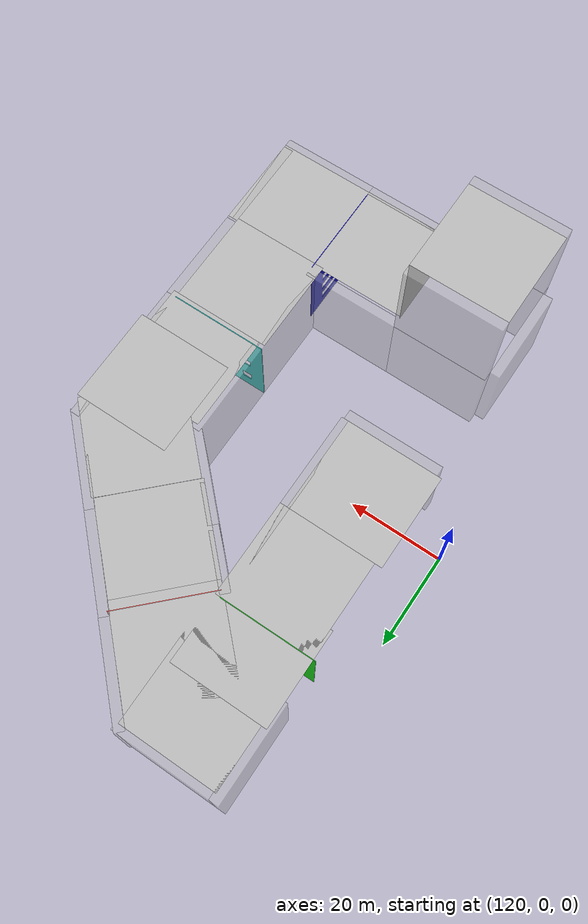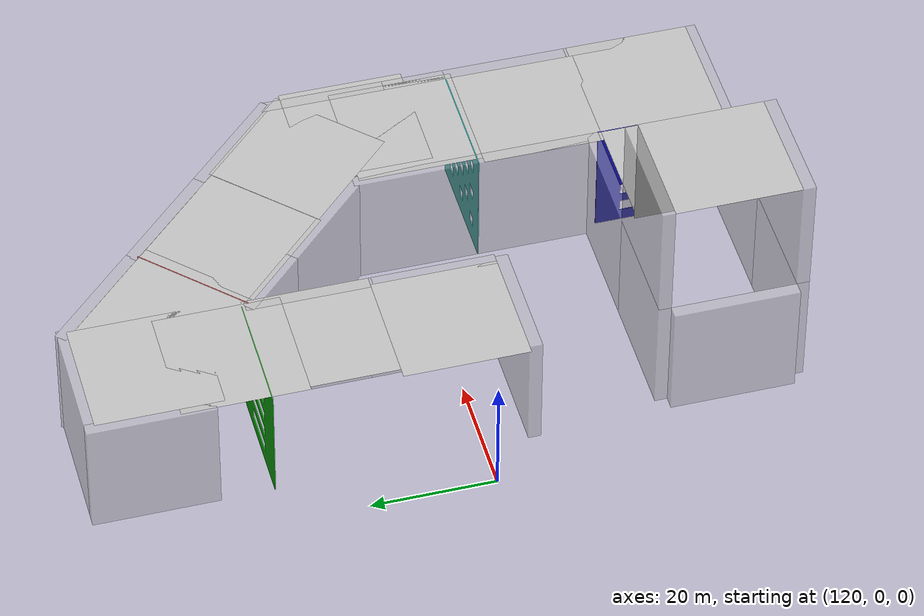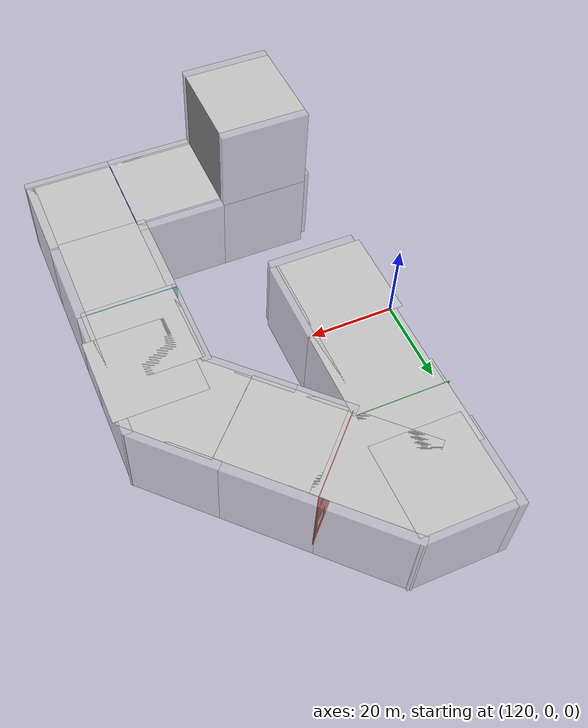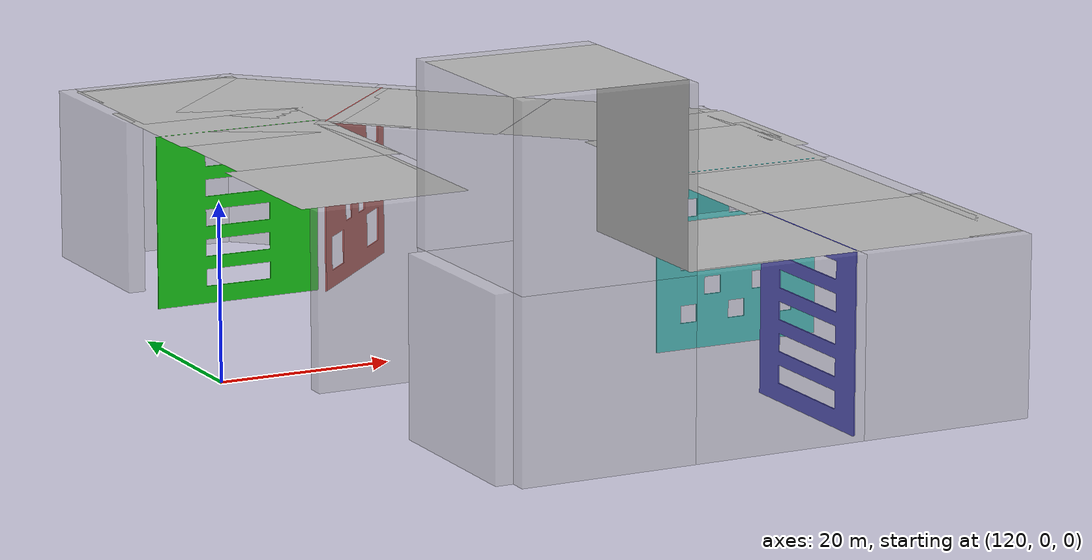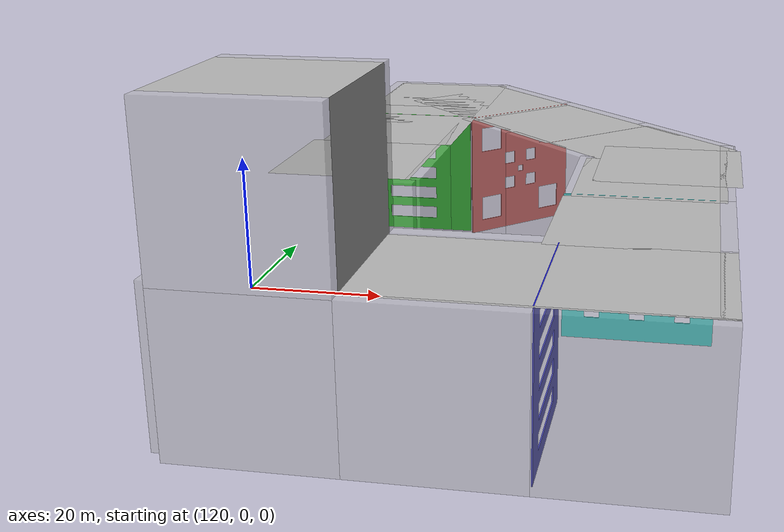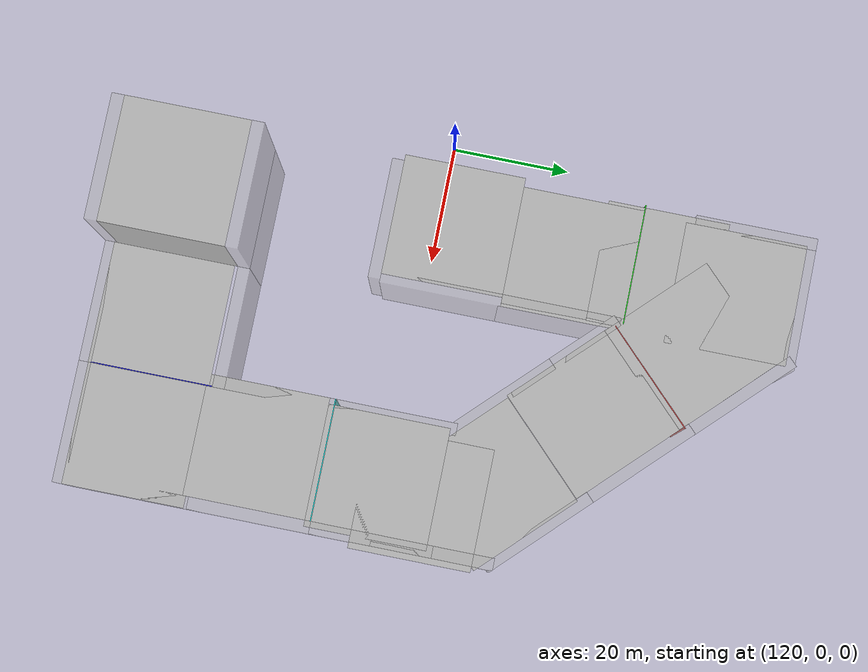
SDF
<sdf version="1.7">
 <model name="race_1_1">
  <link name="link_clone_10_clone_3">
   <pose>140 -51 30 1.5708 -0 0</pose>
   <visual name="visual">
    <transparency>0.6</transparency>
    <geometry><box><size>20 20 2</size></box></geometry>
    <material>
     <script>
      <uri>model://new_wall/materials/scripts</uri>
      <uri>model://new_wall/materials/textures/</uri>
      <name>NewWall/Image</name>
     </script>
     <shader type="pixel"/>
    </material>
   </visual>
   <collision name="collision">
    <geometry><box><size>20 20 2</size></box></geometry>
    <surface>
     <friction>
      <ode><mu>1</mu><mu2>1</mu2><fdir1>0 0 0</fdir1><slip1>0</slip1><slip2>0</slip2></ode>
      <torsional>
       <coefficient>1</coefficient>
       <patch_radius>0</patch_radius>
       <surface_radius>0</surface_radius>
       <use_patch_radius>1</use_patch_radius>
       <ode><slip>0</slip></ode>
      </torsional>
     </friction>
     <bounce><restitution_coefficient>0</restitution_coefficient><threshold>1e+06</threshold></bounce>
     <contact>
      <collide_without_contact>0</collide_without_contact>
      <collide_without_contact_bitmask>1</collide_without_contact_bitmask>
      <collide_bitmask>1</collide_bitmask>
      <ode>
       <soft_cfm>0</soft_cfm>
       <soft_erp>0.2</soft_erp>
       <kp>1e+13</kp>
       <kd>1</kd>
       <max_vel>0.01</max_vel>
       <min_depth>0</min_depth>
      </ode>
      <bullet>
       <split_impulse>1</split_impulse>
       <split_impulse_penetration_threshold>-0.01</split_impulse_penetration_threshold>
       <soft_cfm>0</soft_cfm>
       <soft_erp>0.2</soft_erp>
       <kp>1e+13</kp>
       <kd>1</kd>
      </bullet>
     </contact>
    </surface>
   </collision>
  </link>
  <link name="link_clone_10_clone_5">
   <pose>140 -29 30 1.5708 -0 0</pose>
   <visual name="visual">
    <transparency>0.6</transparency>
    <geometry><box><size>20 20 2</size></box></geometry>
    <material>
     <script>
      <uri>model://new_wall/materials/scripts</uri>
      <uri>model://new_wall/materials/textures/</uri>
      <name>NewWall/Image</name>
     </script>
     <shader type="pixel"/>
    </material>
   </visual>
   <collision name="collision">
    <geometry><box><size>20 20 2</size></box></geometry>
    <surface>
     <friction>
      <ode><mu>1</mu><mu2>1</mu2><fdir1>0 0 0</fdir1><slip1>0</slip1><slip2>0</slip2></ode>
      <torsional>
       <coefficient>1</coefficient>
       <patch_radius>0</patch_radius>
       <surface_radius>0</surface_radius>
       <use_patch_radius>1</use_patch_radius>
       <ode><slip>0</slip></ode>
      </torsional>
     </friction>
     <bounce><restitution_coefficient>0</restitution_coefficient><threshold>1e+06</threshold></bounce>
     <contact>
      <collide_without_contact>0</collide_without_contact>
      <collide_without_contact_bitmask>1</collide_without_contact_bitmask>
      <collide_bitmask>1</collide_bitmask>
      <ode>
       <soft_cfm>0</soft_cfm>
       <soft_erp>0.2</soft_erp>
       <kp>1e+13</kp>
       <kd>1</kd>
       <max_vel>0.01</max_vel>
       <min_depth>0</min_depth>
      </ode>
      <bullet>
       <split_impulse>1</split_impulse>
       <split_impulse_penetration_threshold>-0.01</split_impulse_penetration_threshold>
       <soft_cfm>0</soft_cfm>
       <soft_erp>0.2</soft_erp>
       <kp>1e+13</kp>
       <kd>1</kd>
      </bullet>
     </contact>
    </surface>
   </collision>
  </link>
  <link name="link_clone_12">
   <pose>140 -29 10 1.5708 -0 0</pose>
   <visual name="visual">
    <transparency>0.6</transparency>
    <geometry><box><size>20 20 2</size></box></geometry>
    <material>
     <script>
      <uri>model://new_wall/materials/scripts</uri>
      <uri>model://new_wall/materials/textures/</uri>
      <name>NewWall/Image</name>
     </script>
     <shader type="pixel"/>
    </material>
   </visual>
   <collision name="collision">
    <geometry><box><size>20 20 2</size></box></geometry>
    <surface>
     <friction>
      <ode><mu>1</mu><mu2>1</mu2><fdir1>0 0 0</fdir1><slip1>0</slip1><slip2>0</slip2></ode>
      <torsional>
       <coefficient>1</coefficient>
       <patch_radius>0</patch_radius>
       <surface_radius>0</surface_radius>
       <use_patch_radius>1</use_patch_radius>
       <ode><slip>0</slip></ode>
      </torsional>
     </friction>
     <bounce><restitution_coefficient>0</restitution_coefficient><threshold>1e+06</threshold></bounce>
     <contact>
      <collide_without_contact>0</collide_without_contact>
      <collide_without_contact_bitmask>1</collide_without_contact_bitmask>
      <collide_bitmask>1</collide_bitmask>
      <ode>
       <soft_cfm>0</soft_cfm>
       <soft_erp>0.2</soft_erp>
       <kp>1e+13</kp>
       <kd>1</kd>
       <max_vel>0.01</max_vel>
       <min_depth>0</min_depth>
      </ode>
      <bullet>
       <split_impulse>1</split_impulse>
       <split_impulse_penetration_threshold>-0.01</split_impulse_penetration_threshold>
       <soft_cfm>0</soft_cfm>
       <soft_erp>0.2</soft_erp>
       <kp>1e+13</kp>
       <kd>1</kd>
      </bullet>
     </contact>
    </surface>
   </collision>
  </link>
  <link name="link_clone_13">
   <pose>160 -29 10 1.5708 -0 0</pose>
   <visual name="visual">
    <transparency>0.6</transparency>
    <geometry><box><size>20 20 2</size></box></geometry>
    <material>
     <script>
      <uri>model://new_wall/materials/scripts</uri>
      <uri>model://new_wall/materials/textures/</uri>
      <name>NewWall/Image</name>
     </script>
     <shader type="pixel"/>
    </material>
   </visual>
   <collision name="collision">
    <geometry><box><size>20 20 2</size></box></geometry>
    <surface>
     <friction>
      <ode><mu>1</mu><mu2>1</mu2><fdir1>0 0 0</fdir1><slip1>0</slip1><slip2>0</slip2></ode>
      <torsional>
       <coefficient>1</coefficient>
       <patch_radius>0</patch_radius>
       <surface_radius>0</surface_radius>
       <use_patch_radius>1</use_patch_radius>
       <ode><slip>0</slip></ode>
      </torsional>
     </friction>
     <bounce><restitution_coefficient>0</restitution_coefficient><threshold>1e+06</threshold></bounce>
     <contact>
      <collide_without_contact>0</collide_without_contact>
      <collide_without_contact_bitmask>1</collide_without_contact_bitmask>
      <collide_bitmask>1</collide_bitmask>
      <ode>
       <soft_cfm>0</soft_cfm>
       <soft_erp>0.2</soft_erp>
       <kp>1e+13</kp>
       <kd>1</kd>
       <max_vel>0.01</max_vel>
       <min_depth>0</min_depth>
      </ode>
      <bullet>
       <split_impulse>1</split_impulse>
       <split_impulse_penetration_threshold>-0.01</split_impulse_penetration_threshold>
       <soft_cfm>0</soft_cfm>
       <soft_erp>0.2</soft_erp>
       <kp>1e+13</kp>
       <kd>1</kd>
      </bullet>
     </contact>
    </surface>
   </collision>
  </link>
  <link name="link_clone_14">
   <pose>140 -51 10 1.5708 -0 0</pose>
   <visual name="visual">
    <transparency>0.6</transparency>
    <geometry><box><size>20 20 2</size></box></geometry>
    <material>
     <script>
      <uri>model://new_wall/materials/scripts</uri>
      <uri>model://new_wall/materials/textures/</uri>
      <name>NewWall/Image</name>
     </script>
     <shader type="pixel"/>
    </material>
   </visual>
   <collision name="collision">
    <geometry><box><size>20 20 2</size></box></geometry>
    <surface>
     <friction>
      <ode><mu>1</mu><mu2>1</mu2><fdir1>0 0 0</fdir1><slip1>0</slip1><slip2>0</slip2></ode>
      <torsional>
       <coefficient>1</coefficient>
       <patch_radius>0</patch_radius>
       <surface_radius>0</surface_radius>
       <use_patch_radius>1</use_patch_radius>
       <ode><slip>0</slip></ode>
      </torsional>
     </friction>
     <bounce><restitution_coefficient>0</restitution_coefficient><threshold>1e+06</threshold></bounce>
     <contact>
      <collide_without_contact>0</collide_without_contact>
      <collide_without_contact_bitmask>1</collide_without_contact_bitmask>
      <collide_bitmask>1</collide_bitmask>
      <ode>
       <soft_cfm>0</soft_cfm>
       <soft_erp>0.2</soft_erp>
       <kp>1e+13</kp>
       <kd>1</kd>
       <max_vel>0.01</max_vel>
       <min_depth>0</min_depth>
      </ode>
      <bullet>
       <split_impulse>1</split_impulse>
       <split_impulse_penetration_threshold>-0.01</split_impulse_penetration_threshold>
       <soft_cfm>0</soft_cfm>
       <soft_erp>0.2</soft_erp>
       <kp>1e+13</kp>
       <kd>1</kd>
      </bullet>
     </contact>
    </surface>
   </collision>
  </link>
  <link name="link_clone_15">
   <pose>160 -51 10 1.5708 -0 0</pose>
   <visual name="visual">
    <transparency>0.6</transparency>
    <geometry><box><size>20 20 2</size></box></geometry>
    <material>
     <script>
      <uri>model://new_wall/materials/scripts</uri>
      <uri>model://new_wall/materials/textures/</uri>
      <name>NewWall/Image</name>
     </script>
     <shader type="pixel"/>
    </material>
   </visual>
   <collision name="collision">
    <geometry><box><size>20 20 2</size></box></geometry>
    <surface>
     <friction>
      <ode><mu>1</mu><mu2>1</mu2><fdir1>0 0 0</fdir1><slip1>0</slip1><slip2>0</slip2></ode>
      <torsional>
       <coefficient>1</coefficient>
       <patch_radius>0</patch_radius>
       <surface_radius>0</surface_radius>
       <use_patch_radius>1</use_patch_radius>
       <ode><slip>0</slip></ode>
      </torsional>
     </friction>
     <bounce><restitution_coefficient>0</restitution_coefficient><threshold>1e+06</threshold></bounce>
     <contact>
      <collide_without_contact>0</collide_without_contact>
      <collide_without_contact_bitmask>1</collide_without_contact_bitmask>
      <collide_bitmask>1</collide_bitmask>
      <ode>
       <soft_cfm>0</soft_cfm>
       <soft_erp>0.2</soft_erp>
       <kp>1e+13</kp>
       <kd>1</kd>
       <max_vel>0.01</max_vel>
       <min_depth>0</min_depth>
      </ode>
      <bullet>
       <split_impulse>1</split_impulse>
       <split_impulse_penetration_threshold>-0.01</split_impulse_penetration_threshold>
       <soft_cfm>0</soft_cfm>
       <soft_erp>0.2</soft_erp>
       <kp>1e+13</kp>
       <kd>1</kd>
      </bullet>
     </contact>
    </surface>
   </collision>
  </link>
  <link name="link_clone_17">
   <pose>180 -51 10 1.5708 -0 0</pose>
   <visual name="visual">
    <transparency>0.6</transparency>
    <geometry><box><size>20 20 2</size></box></geometry>
    <material>
     <script>
      <uri>model://new_wall/materials/scripts</uri>
      <uri>model://new_wall/materials/textures/</uri>
      <name>NewWall/Image</name>
     </script>
     <shader type="pixel"/>
    </material>
   </visual>
   <collision name="collision">
    <geometry><box><size>20 20 2</size></box></geometry>
    <surface>
     <friction>
      <ode><mu>1</mu><mu2>1</mu2><fdir1>0 0 0</fdir1><slip1>0</slip1><slip2>0</slip2></ode>
      <torsional>
       <coefficient>1</coefficient>
       <patch_radius>0</patch_radius>
       <surface_radius>0</surface_radius>
       <use_patch_radius>1</use_patch_radius>
       <ode><slip>0</slip></ode>
      </torsional>
     </friction>
     <bounce><restitution_coefficient>0</restitution_coefficient><threshold>1e+06</threshold></bounce>
     <contact>
      <collide_without_contact>0</collide_without_contact>
      <collide_without_contact_bitmask>1</collide_without_contact_bitmask>
      <collide_bitmask>1</collide_bitmask>
      <ode>
       <soft_cfm>0</soft_cfm>
       <soft_erp>0.2</soft_erp>
       <kp>1e+13</kp>
       <kd>1</kd>
       <max_vel>0.01</max_vel>
       <min_depth>0</min_depth>
      </ode>
      <bullet>
       <split_impulse>1</split_impulse>
       <split_impulse_penetration_threshold>-0.01</split_impulse_penetration_threshold>
       <soft_cfm>0</soft_cfm>
       <soft_erp>0.2</soft_erp>
       <kp>1e+13</kp>
       <kd>1</kd>
      </bullet>
     </contact>
    </surface>
   </collision>
  </link>
  <link name="link_clone_18">
   <pose>182.482 26 10 1.5708 3e-06 -0.785398</pose>
   <visual name="visual">
    <transparency>0.6</transparency>
    <geometry><box><size>20 20 2</size></box></geometry>
    <material>
     <script>
      <uri>model://new_wall/materials/scripts</uri>
      <uri>model://new_wall/materials/textures/</uri>
      <name>NewWall/Image</name>
     </script>
     <shader type="pixel"/>
    </material>
   </visual>
   <collision name="collision">
    <geometry><box><size>20 20 2</size></box></geometry>
    <surface>
     <friction>
      <ode><mu>1</mu><mu2>1</mu2><fdir1>0 0 0</fdir1><slip1>0</slip1><slip2>0</slip2></ode>
      <torsional>
       <coefficient>1</coefficient>
       <patch_radius>0</patch_radius>
       <surface_radius>0</surface_radius>
       <use_patch_radius>1</use_patch_radius>
       <ode><slip>0</slip></ode>
      </torsional>
     </friction>
     <bounce><restitution_coefficient>0</restitution_coefficient><threshold>1e+06</threshold></bounce>
     <contact>
      <collide_without_contact>0</collide_without_contact>
      <collide_without_contact_bitmask>1</collide_without_contact_bitmask>
      <collide_bitmask>1</collide_bitmask>
      <ode>
       <soft_cfm>0</soft_cfm>
       <soft_erp>0.2</soft_erp>
       <kp>1e+13</kp>
       <kd>1</kd>
       <max_vel>0.01</max_vel>
       <min_depth>0</min_depth>
      </ode>
      <bullet>
       <split_impulse>1</split_impulse>
       <split_impulse_penetration_threshold>-0.01</split_impulse_penetration_threshold>
       <soft_cfm>0</soft_cfm>
       <soft_erp>0.2</soft_erp>
       <kp>1e+13</kp>
       <kd>1</kd>
      </bullet>
     </contact>
    </surface>
   </collision>
  </link>
  <link name="link_clone_18_clone">
   <pose>162.585 16 10 1.5708 3e-06 -0.785398</pose>
   <visual name="visual">
    <transparency>0.6</transparency>
    <geometry><box><size>20 20 2</size></box></geometry>
    <material>
     <script>
      <uri>model://new_wall/materials/scripts</uri>
      <uri>model://new_wall/materials/textures/</uri>
      <name>NewWall/Image</name>
     </script>
     <shader type="pixel"/>
    </material>
   </visual>
   <collision name="collision">
    <geometry><box><size>20 20 2</size></box></geometry>
    <surface>
     <friction>
      <ode><mu>1</mu><mu2>1</mu2><fdir1>0 0 0</fdir1><slip1>0</slip1><slip2>0</slip2></ode>
      <torsional>
       <coefficient>1</coefficient>
       <patch_radius>0</patch_radius>
       <surface_radius>0</surface_radius>
       <use_patch_radius>1</use_patch_radius>
       <ode><slip>0</slip></ode>
      </torsional>
     </friction>
     <bounce><restitution_coefficient>0</restitution_coefficient><threshold>1e+06</threshold></bounce>
     <contact>
      <collide_without_contact>0</collide_without_contact>
      <collide_without_contact_bitmask>1</collide_without_contact_bitmask>
      <collide_bitmask>1</collide_bitmask>
      <ode>
       <soft_cfm>0</soft_cfm>
       <soft_erp>0.2</soft_erp>
       <kp>1e+13</kp>
       <kd>1</kd>
       <max_vel>0.01</max_vel>
       <min_depth>0</min_depth>
      </ode>
      <bullet>
       <split_impulse>1</split_impulse>
       <split_impulse_penetration_threshold>-0.01</split_impulse_penetration_threshold>
       <soft_cfm>0</soft_cfm>
       <soft_erp>0.2</soft_erp>
       <kp>1e+13</kp>
       <kd>1</kd>
      </bullet>
     </contact>
    </surface>
   </collision>
  </link>
  <link name="link_clone_18_clone_0">
   <pose>168.495 40 10 1.5708 3e-06 -0.785398</pose>
   <visual name="visual">
    <transparency>0.6</transparency>
    <geometry><box><size>20 20 2</size></box></geometry>
    <material>
     <script>
      <uri>model://new_wall/materials/scripts</uri>
      <uri>model://new_wall/materials/textures/</uri>
      <name>NewWall/Image</name>
     </script>
     <shader type="pixel"/>
    </material>
   </visual>
   <collision name="collision">
    <geometry><box><size>20 20 2</size></box></geometry>
    <surface>
     <friction>
      <ode><mu>1</mu><mu2>1</mu2><fdir1>0 0 0</fdir1><slip1>0</slip1><slip2>0</slip2></ode>
      <torsional>
       <coefficient>1</coefficient>
       <patch_radius>0</patch_radius>
       <surface_radius>0</surface_radius>
       <use_patch_radius>1</use_patch_radius>
       <ode><slip>0</slip></ode>
      </torsional>
     </friction>
     <bounce><restitution_coefficient>0</restitution_coefficient><threshold>1e+06</threshold></bounce>
     <contact>
      <collide_without_contact>0</collide_without_contact>
      <collide_without_contact_bitmask>1</collide_without_contact_bitmask>
      <collide_bitmask>1</collide_bitmask>
      <ode>
       <soft_cfm>0</soft_cfm>
       <soft_erp>0.2</soft_erp>
       <kp>1e+13</kp>
       <kd>1</kd>
       <max_vel>0.01</max_vel>
       <min_depth>0</min_depth>
      </ode>
      <bullet>
       <split_impulse>1</split_impulse>
       <split_impulse_penetration_threshold>-0.01</split_impulse_penetration_threshold>
       <soft_cfm>0</soft_cfm>
       <soft_erp>0.2</soft_erp>
       <kp>1e+13</kp>
       <kd>1</kd>
      </bullet>
     </contact>
    </surface>
   </collision>
  </link>
  <link name="link_clone_18_clone_1">
   <pose>153.586 25 10 1.5708 3e-06 -0.785398</pose>
   <visual name="visual">
    <transparency>0.6</transparency>
    <geometry><box><size>20 20 2</size></box></geometry>
    <material>
     <script>
      <uri>model://new_wall/materials/scripts</uri>
      <uri>model://new_wall/materials/textures/</uri>
      <name>NewWall/Image</name>
     </script>
     <shader type="pixel"/>
    </material>
   </visual>
   <collision name="collision">
    <geometry><box><size>20 20 2</size></box></geometry>
    <surface>
     <friction>
      <ode><mu>1</mu><mu2>1</mu2><fdir1>0 0 0</fdir1><slip1>0</slip1><slip2>0</slip2></ode>
      <torsional>
       <coefficient>1</coefficient>
       <patch_radius>0</patch_radius>
       <surface_radius>0</surface_radius>
       <use_patch_radius>1</use_patch_radius>
       <ode><slip>0</slip></ode>
      </torsional>
     </friction>
     <bounce><restitution_coefficient>0</restitution_coefficient><threshold>1e+06</threshold></bounce>
     <contact>
      <collide_without_contact>0</collide_without_contact>
      <collide_without_contact_bitmask>1</collide_without_contact_bitmask>
      <collide_bitmask>1</collide_bitmask>
      <ode>
       <soft_cfm>0</soft_cfm>
       <soft_erp>0.2</soft_erp>
       <kp>1e+13</kp>
       <kd>1</kd>
       <max_vel>0.01</max_vel>
       <min_depth>0</min_depth>
      </ode>
      <bullet>
       <split_impulse>1</split_impulse>
       <split_impulse_penetration_threshold>-0.01</split_impulse_penetration_threshold>
       <soft_cfm>0</soft_cfm>
       <soft_erp>0.2</soft_erp>
       <kp>1e+13</kp>
       <kd>1</kd>
      </bullet>
     </contact>
    </surface>
   </collision>
  </link>
  <link name="link_clone_18_clone_2">
   <pose>154.565 54 10 1.5708 3e-06 -0.785398</pose>
   <visual name="visual">
    <transparency>0.6</transparency>
    <geometry><box><size>20 20 2</size></box></geometry>
    <material>
     <script>
      <uri>model://new_wall/materials/scripts</uri>
      <uri>model://new_wall/materials/textures/</uri>
      <name>NewWall/Image</name>
     </script>
     <shader type="pixel"/>
    </material>
   </visual>
   <collision name="collision">
    <geometry><box><size>20 20 2</size></box></geometry>
    <surface>
     <friction>
      <ode><mu>1</mu><mu2>1</mu2><fdir1>0 0 0</fdir1><slip1>0</slip1><slip2>0</slip2></ode>
      <torsional>
       <coefficient>1</coefficient>
       <patch_radius>0</patch_radius>
       <surface_radius>0</surface_radius>
       <use_patch_radius>1</use_patch_radius>
       <ode><slip>0</slip></ode>
      </torsional>
     </friction>
     <bounce><restitution_coefficient>0</restitution_coefficient><threshold>1e+06</threshold></bounce>
     <contact>
      <collide_without_contact>0</collide_without_contact>
      <collide_without_contact_bitmask>1</collide_without_contact_bitmask>
      <collide_bitmask>1</collide_bitmask>
      <ode>
       <soft_cfm>0</soft_cfm>
       <soft_erp>0.2</soft_erp>
       <kp>1e+13</kp>
       <kd>1</kd>
       <max_vel>0.01</max_vel>
       <min_depth>0</min_depth>
      </ode>
      <bullet>
       <split_impulse>1</split_impulse>
       <split_impulse_penetration_threshold>-0.01</split_impulse_penetration_threshold>
       <soft_cfm>0</soft_cfm>
       <soft_erp>0.2</soft_erp>
       <kp>1e+13</kp>
       <kd>1</kd>
      </bullet>
     </contact>
    </surface>
   </collision>
  </link>
  <link name="link_clone_19">
   <pose>139 60.4789 10 1.5708 -0 0</pose>
   <visual name="visual">
    <transparency>0.6</transparency>
    <geometry><box><size>20 20 2</size></box></geometry>
    <material>
     <script>
      <uri>model://new_wall/materials/scripts</uri>
      <uri>model://new_wall/materials/textures/</uri>
      <name>NewWall/Image</name>
     </script>
     <shader type="pixel"/>
    </material>
   </visual>
   <collision name="collision">
    <geometry><box><size>20 20 2</size></box></geometry>
    <surface>
     <friction>
      <ode><mu>1</mu><mu2>1</mu2><fdir1>0 0 0</fdir1><slip1>0</slip1><slip2>0</slip2></ode>
      <torsional>
       <coefficient>1</coefficient>
       <patch_radius>0</patch_radius>
       <surface_radius>0</surface_radius>
       <use_patch_radius>1</use_patch_radius>
       <ode><slip>0</slip></ode>
      </torsional>
     </friction>
     <bounce><restitution_coefficient>0</restitution_coefficient><threshold>1e+06</threshold></bounce>
     <contact>
      <collide_without_contact>0</collide_without_contact>
      <collide_without_contact_bitmask>1</collide_without_contact_bitmask>
      <collide_bitmask>1</collide_bitmask>
      <ode>
       <soft_cfm>0</soft_cfm>
       <soft_erp>0.2</soft_erp>
       <kp>1e+13</kp>
       <kd>1</kd>
       <max_vel>0.01</max_vel>
       <min_depth>0</min_depth>
      </ode>
      <bullet>
       <split_impulse>1</split_impulse>
       <split_impulse_penetration_threshold>-0.01</split_impulse_penetration_threshold>
       <soft_cfm>0</soft_cfm>
       <soft_erp>0.2</soft_erp>
       <kp>1e+13</kp>
       <kd>1</kd>
      </bullet>
     </contact>
    </surface>
   </collision>
  </link>
  <link name="link_clone_20">
   <pose>137.494 -8 10 1.5708 -0 0</pose>
   <visual name="visual">
    <transparency>0.6</transparency>
    <geometry><box><size>20 20 2</size></box></geometry>
    <material>
     <script>
      <uri>model://new_wall/materials/scripts</uri>
      <uri>model://new_wall/materials/textures/</uri>
      <name>NewWall/Image</name>
     </script>
     <shader type="pixel"/>
    </material>
   </visual>
   <collision name="collision">
    <geometry><box><size>20 20 2</size></box></geometry>
    <surface>
     <friction>
      <ode><mu>1</mu><mu2>1</mu2><fdir1>0 0 0</fdir1><slip1>0</slip1><slip2>0</slip2></ode>
      <torsional>
       <coefficient>1</coefficient>
       <patch_radius>0</patch_radius>
       <surface_radius>0</surface_radius>
       <use_patch_radius>1</use_patch_radius>
       <ode><slip>0</slip></ode>
      </torsional>
     </friction>
     <bounce><restitution_coefficient>0</restitution_coefficient><threshold>1e+06</threshold></bounce>
     <contact>
      <collide_without_contact>0</collide_without_contact>
      <collide_without_contact_bitmask>1</collide_without_contact_bitmask>
      <collide_bitmask>1</collide_bitmask>
      <ode>
       <soft_cfm>0</soft_cfm>
       <soft_erp>0.2</soft_erp>
       <kp>1e+13</kp>
       <kd>1</kd>
       <max_vel>0.01</max_vel>
       <min_depth>0</min_depth>
      </ode>
      <bullet>
       <split_impulse>1</split_impulse>
       <split_impulse_penetration_threshold>-0.01</split_impulse_penetration_threshold>
       <soft_cfm>0</soft_cfm>
       <soft_erp>0.2</soft_erp>
       <kp>1e+13</kp>
       <kd>1</kd>
      </bullet>
     </contact>
    </surface>
   </collision>
  </link>
  <link name="link_clone_3_clone_11">
   <pose>147 22.5682 10 1.5708 0 1.5708</pose>
   <visual name="visual">
    <transparency>0.6</transparency>
    <geometry><box><size>20 20 2</size></box></geometry>
    <material>
     <script>
      <uri>model://new_wall/materials/scripts</uri>
      <uri>model://new_wall/materials/textures/</uri>
      <name>NewWall/Image</name>
     </script>
     <shader type="pixel"/>
    </material>
   </visual>
   <collision name="collision">
    <geometry><box><size>20 20 2</size></box></geometry>
    <surface>
     <friction>
      <ode><mu>1</mu><mu2>1</mu2><fdir1>0 0 0</fdir1><slip1>0</slip1><slip2>0</slip2></ode>
      <torsional>
       <coefficient>1</coefficient>
       <patch_radius>0</patch_radius>
       <surface_radius>0</surface_radius>
       <use_patch_radius>1</use_patch_radius>
       <ode><slip>0</slip></ode>
      </torsional>
     </friction>
     <bounce><restitution_coefficient>0</restitution_coefficient><threshold>1e+06</threshold></bounce>
     <contact>
      <collide_without_contact>0</collide_without_contact>
      <collide_without_contact_bitmask>1</collide_without_contact_bitmask>
      <collide_bitmask>1</collide_bitmask>
      <ode>
       <soft_cfm>0</soft_cfm>
       <soft_erp>0.2</soft_erp>
       <kp>1e+13</kp>
       <kd>1</kd>
       <max_vel>0.01</max_vel>
       <min_depth>0</min_depth>
      </ode>
      <bullet>
       <split_impulse>1</split_impulse>
       <split_impulse_penetration_threshold>-0.01</split_impulse_penetration_threshold>
       <soft_cfm>0</soft_cfm>
       <soft_erp>0.2</soft_erp>
       <kp>1e+13</kp>
       <kd>1</kd>
      </bullet>
     </contact>
    </surface>
   </collision>
  </link>
  <link name="link_clone_3_clone_13">
   <pose>147 3 10 1.5708 0 1.5708</pose>
   <visual name="visual">
    <transparency>0.6</transparency>
    <geometry><box><size>20 20 2</size></box></geometry>
    <material>
     <script>
      <uri>model://new_wall/materials/scripts</uri>
      <uri>model://new_wall/materials/textures/</uri>
      <name>NewWall/Image</name>
     </script>
     <shader type="pixel"/>
    </material>
   </visual>
   <collision name="collision">
    <geometry><box><size>20 20 2</size></box></geometry>
    <surface>
     <friction>
      <ode><mu>1</mu><mu2>1</mu2><fdir1>0 0 0</fdir1><slip1>0</slip1><slip2>0</slip2></ode>
      <torsional>
       <coefficient>1</coefficient>
       <patch_radius>0</patch_radius>
       <surface_radius>0</surface_radius>
       <use_patch_radius>1</use_patch_radius>
       <ode><slip>0</slip></ode>
      </torsional>
     </friction>
     <bounce><restitution_coefficient>0</restitution_coefficient><threshold>1e+06</threshold></bounce>
     <contact>
      <collide_without_contact>0</collide_without_contact>
      <collide_without_contact_bitmask>1</collide_without_contact_bitmask>
      <collide_bitmask>1</collide_bitmask>
      <ode>
       <soft_cfm>0</soft_cfm>
       <soft_erp>0.2</soft_erp>
       <kp>1e+13</kp>
       <kd>1</kd>
       <max_vel>0.01</max_vel>
       <min_depth>0</min_depth>
      </ode>
      <bullet>
       <split_impulse>1</split_impulse>
       <split_impulse_penetration_threshold>-0.01</split_impulse_penetration_threshold>
       <soft_cfm>0</soft_cfm>
       <soft_erp>0.2</soft_erp>
       <kp>1e+13</kp>
       <kd>1</kd>
      </bullet>
     </contact>
    </surface>
   </collision>
  </link>
  <link name="link_clone_3_clone_16">
   <pose>129 -40 10 1.5708 0 1.5708</pose>
   <visual name="visual">
    <transparency>0.6</transparency>
    <geometry><box><size>20 20 2</size></box></geometry>
    <material>
     <script>
      <uri>model://new_wall/materials/scripts</uri>
      <uri>model://new_wall/materials/textures/</uri>
      <name>NewWall/Image</name>
     </script>
     <shader type="pixel"/>
    </material>
   </visual>
   <collision name="collision">
    <geometry><box><size>20 20 2</size></box></geometry>
    <surface>
     <friction>
      <ode><mu>1</mu><mu2>1</mu2><fdir1>0 0 0</fdir1><slip1>0</slip1><slip2>0</slip2></ode>
      <torsional>
       <coefficient>1</coefficient>
       <patch_radius>0</patch_radius>
       <surface_radius>0</surface_radius>
       <use_patch_radius>1</use_patch_radius>
       <ode><slip>0</slip></ode>
      </torsional>
     </friction>
     <bounce><restitution_coefficient>0</restitution_coefficient><threshold>1e+06</threshold></bounce>
     <contact>
      <collide_without_contact>0</collide_without_contact>
      <collide_without_contact_bitmask>1</collide_without_contact_bitmask>
      <collide_bitmask>1</collide_bitmask>
      <ode>
       <soft_cfm>0</soft_cfm>
       <soft_erp>0.2</soft_erp>
       <kp>1e+13</kp>
       <kd>1</kd>
       <max_vel>0.01</max_vel>
       <min_depth>0</min_depth>
      </ode>
      <bullet>
       <split_impulse>1</split_impulse>
       <split_impulse_penetration_threshold>-0.01</split_impulse_penetration_threshold>
       <soft_cfm>0</soft_cfm>
       <soft_erp>0.2</soft_erp>
       <kp>1e+13</kp>
       <kd>1</kd>
      </bullet>
     </contact>
    </surface>
   </collision>
  </link>
  <link name="link_clone_3_clone_3">
   <pose>189 -40 10 1.5708 0 1.5708</pose>
   <visual name="visual">
    <transparency>0.6</transparency>
    <geometry><box><size>20 20 2</size></box></geometry>
    <material>
     <script>
      <uri>model://new_wall/materials/scripts</uri>
      <uri>model://new_wall/materials/textures/</uri>
      <name>NewWall/Image</name>
     </script>
     <shader type="pixel"/>
    </material>
   </visual>
   <collision name="collision">
    <geometry><box><size>20 20 2</size></box></geometry>
    <surface>
     <friction>
      <ode><mu>1</mu><mu2>1</mu2><fdir1>0 0 0</fdir1><slip1>0</slip1><slip2>0</slip2></ode>
      <torsional>
       <coefficient>1</coefficient>
       <patch_radius>0</patch_radius>
       <surface_radius>0</surface_radius>
       <use_patch_radius>1</use_patch_radius>
       <ode><slip>0</slip></ode>
      </torsional>
     </friction>
     <bounce><restitution_coefficient>0</restitution_coefficient><threshold>1e+06</threshold></bounce>
     <contact>
      <collide_without_contact>0</collide_without_contact>
      <collide_without_contact_bitmask>1</collide_without_contact_bitmask>
      <collide_bitmask>1</collide_bitmask>
      <ode>
       <soft_cfm>0</soft_cfm>
       <soft_erp>0.2</soft_erp>
       <kp>1e+13</kp>
       <kd>1</kd>
       <max_vel>0.01</max_vel>
       <min_depth>0</min_depth>
      </ode>
      <bullet>
       <split_impulse>1</split_impulse>
       <split_impulse_penetration_threshold>-0.01</split_impulse_penetration_threshold>
       <soft_cfm>0</soft_cfm>
       <soft_erp>0.2</soft_erp>
       <kp>1e+13</kp>
       <kd>1</kd>
      </bullet>
     </contact>
    </surface>
   </collision>
  </link>
  <link name="link_clone_3_clone_4">
   <pose>169 -20 10 1.5708 0 1.5708</pose>
   <visual name="visual">
    <transparency>0.6</transparency>
    <geometry><box><size>20 20 2</size></box></geometry>
    <material>
     <script>
      <uri>model://new_wall/materials/scripts</uri>
      <uri>model://new_wall/materials/textures/</uri>
      <name>NewWall/Image</name>
     </script>
     <shader type="pixel"/>
    </material>
   </visual>
   <collision name="collision">
    <geometry><box><size>20 20 2</size></box></geometry>
    <surface>
     <friction>
      <ode><mu>1</mu><mu2>1</mu2><fdir1>0 0 0</fdir1><slip1>0</slip1><slip2>0</slip2></ode>
      <torsional>
       <coefficient>1</coefficient>
       <patch_radius>0</patch_radius>
       <surface_radius>0</surface_radius>
       <use_patch_radius>1</use_patch_radius>
       <ode><slip>0</slip></ode>
      </torsional>
     </friction>
     <bounce><restitution_coefficient>0</restitution_coefficient><threshold>1e+06</threshold></bounce>
     <contact>
      <collide_without_contact>0</collide_without_contact>
      <collide_without_contact_bitmask>1</collide_without_contact_bitmask>
      <collide_bitmask>1</collide_bitmask>
      <ode>
       <soft_cfm>0</soft_cfm>
       <soft_erp>0.2</soft_erp>
       <kp>1e+13</kp>
       <kd>1</kd>
       <max_vel>0.01</max_vel>
       <min_depth>0</min_depth>
      </ode>
      <bullet>
       <split_impulse>1</split_impulse>
       <split_impulse_penetration_threshold>-0.01</split_impulse_penetration_threshold>
       <soft_cfm>0</soft_cfm>
       <soft_erp>0.2</soft_erp>
       <kp>1e+13</kp>
       <kd>1</kd>
      </bullet>
     </contact>
    </surface>
   </collision>
  </link>
  <link name="link_clone_3_clone_5">
   <pose>189 -20 10 1.5708 0 1.5708</pose>
   <visual name="visual">
    <transparency>0.6</transparency>
    <geometry><box><size>20 20 2</size></box></geometry>
    <material>
     <script>
      <uri>model://new_wall/materials/scripts</uri>
      <uri>model://new_wall/materials/textures/</uri>
      <name>NewWall/Image</name>
     </script>
     <shader type="pixel"/>
    </material>
   </visual>
   <collision name="collision">
    <geometry><box><size>20 20 2</size></box></geometry>
    <surface>
     <friction>
      <ode><mu>1</mu><mu2>1</mu2><fdir1>0 0 0</fdir1><slip1>0</slip1><slip2>0</slip2></ode>
      <torsional>
       <coefficient>1</coefficient>
       <patch_radius>0</patch_radius>
       <surface_radius>0</surface_radius>
       <use_patch_radius>1</use_patch_radius>
       <ode><slip>0</slip></ode>
      </torsional>
     </friction>
     <bounce><restitution_coefficient>0</restitution_coefficient><threshold>1e+06</threshold></bounce>
     <contact>
      <collide_without_contact>0</collide_without_contact>
      <collide_without_contact_bitmask>1</collide_without_contact_bitmask>
      <collide_bitmask>1</collide_bitmask>
      <ode>
       <soft_cfm>0</soft_cfm>
       <soft_erp>0.2</soft_erp>
       <kp>1e+13</kp>
       <kd>1</kd>
       <max_vel>0.01</max_vel>
       <min_depth>0</min_depth>
      </ode>
      <bullet>
       <split_impulse>1</split_impulse>
       <split_impulse_penetration_threshold>-0.01</split_impulse_penetration_threshold>
       <soft_cfm>0</soft_cfm>
       <soft_erp>0.2</soft_erp>
       <kp>1e+13</kp>
       <kd>1</kd>
      </bullet>
     </contact>
    </surface>
   </collision>
  </link>
  <link name="link_clone_3_clone_6">
   <pose>189 0 10 1.5708 0 1.5708</pose>
   <visual name="visual">
    <transparency>0.6</transparency>
    <geometry><box><size>20 20 2</size></box></geometry>
    <material>
     <script>
      <uri>model://new_wall/materials/scripts</uri>
      <uri>model://new_wall/materials/textures/</uri>
      <name>NewWall/Image</name>
     </script>
     <shader type="pixel"/>
    </material>
   </visual>
   <collision name="collision">
    <geometry><box><size>20 20 2</size></box></geometry>
    <surface>
     <friction>
      <ode><mu>1</mu><mu2>1</mu2><fdir1>0 0 0</fdir1><slip1>0</slip1><slip2>0</slip2></ode>
      <torsional>
       <coefficient>1</coefficient>
       <patch_radius>0</patch_radius>
       <surface_radius>0</surface_radius>
       <use_patch_radius>1</use_patch_radius>
       <ode><slip>0</slip></ode>
      </torsional>
     </friction>
     <bounce><restitution_coefficient>0</restitution_coefficient><threshold>1e+06</threshold></bounce>
     <contact>
      <collide_without_contact>0</collide_without_contact>
      <collide_without_contact_bitmask>1</collide_without_contact_bitmask>
      <collide_bitmask>1</collide_bitmask>
      <ode>
       <soft_cfm>0</soft_cfm>
       <soft_erp>0.2</soft_erp>
       <kp>1e+13</kp>
       <kd>1</kd>
       <max_vel>0.01</max_vel>
       <min_depth>0</min_depth>
      </ode>
      <bullet>
       <split_impulse>1</split_impulse>
       <split_impulse_penetration_threshold>-0.01</split_impulse_penetration_threshold>
       <soft_cfm>0</soft_cfm>
       <soft_erp>0.2</soft_erp>
       <kp>1e+13</kp>
       <kd>1</kd>
      </bullet>
     </contact>
    </surface>
   </collision>
  </link>
  <link name="link_clone_3_clone_7">
   <pose>169 0 10 1.5708 0 1.5708</pose>
   <visual name="visual">
    <transparency>0.6</transparency>
    <geometry><box><size>20 20 2</size></box></geometry>
    <material>
     <script>
      <uri>model://new_wall/materials/scripts</uri>
      <uri>model://new_wall/materials/textures/</uri>
      <name>NewWall/Image</name>
     </script>
     <shader type="pixel"/>
    </material>
   </visual>
   <collision name="collision">
    <geometry><box><size>20 20 2</size></box></geometry>
    <surface>
     <friction>
      <ode><mu>1</mu><mu2>1</mu2><fdir1>0 0 0</fdir1><slip1>0</slip1><slip2>0</slip2></ode>
      <torsional>
       <coefficient>1</coefficient>
       <patch_radius>0</patch_radius>
       <surface_radius>0</surface_radius>
       <use_patch_radius>1</use_patch_radius>
       <ode><slip>0</slip></ode>
      </torsional>
     </friction>
     <bounce><restitution_coefficient>0</restitution_coefficient><threshold>1e+06</threshold></bounce>
     <contact>
      <collide_without_contact>0</collide_without_contact>
      <collide_without_contact_bitmask>1</collide_without_contact_bitmask>
      <collide_bitmask>1</collide_bitmask>
      <ode>
       <soft_cfm>0</soft_cfm>
       <soft_erp>0.2</soft_erp>
       <kp>1e+13</kp>
       <kd>1</kd>
       <max_vel>0.01</max_vel>
       <min_depth>0</min_depth>
      </ode>
      <bullet>
       <split_impulse>1</split_impulse>
       <split_impulse_penetration_threshold>-0.01</split_impulse_penetration_threshold>
       <soft_cfm>0</soft_cfm>
       <soft_erp>0.2</soft_erp>
       <kp>1e+13</kp>
       <kd>1</kd>
      </bullet>
     </contact>
    </surface>
   </collision>
  </link>
  <link name="link_clone_3_clone_8">
   <pose>189 10 10 1.5708 0 1.5708</pose>
   <visual name="visual">
    <transparency>0.6</transparency>
    <geometry><box><size>20 20 2</size></box></geometry>
    <material>
     <script>
      <uri>model://new_wall/materials/scripts</uri>
      <uri>model://new_wall/materials/textures/</uri>
      <name>NewWall/Image</name>
     </script>
     <shader type="pixel"/>
    </material>
   </visual>
   <collision name="collision">
    <geometry><box><size>20 20 2</size></box></geometry>
    <surface>
     <friction>
      <ode><mu>1</mu><mu2>1</mu2><fdir1>0 0 0</fdir1><slip1>0</slip1><slip2>0</slip2></ode>
      <torsional>
       <coefficient>1</coefficient>
       <patch_radius>0</patch_radius>
       <surface_radius>0</surface_radius>
       <use_patch_radius>1</use_patch_radius>
       <ode><slip>0</slip></ode>
      </torsional>
     </friction>
     <bounce><restitution_coefficient>0</restitution_coefficient><threshold>1e+06</threshold></bounce>
     <contact>
      <collide_without_contact>0</collide_without_contact>
      <collide_without_contact_bitmask>1</collide_without_contact_bitmask>
      <collide_bitmask>1</collide_bitmask>
      <ode>
       <soft_cfm>0</soft_cfm>
       <soft_erp>0.2</soft_erp>
       <kp>1e+13</kp>
       <kd>1</kd>
       <max_vel>0.01</max_vel>
       <min_depth>0</min_depth>
      </ode>
      <bullet>
       <split_impulse>1</split_impulse>
       <split_impulse_penetration_threshold>-0.01</split_impulse_penetration_threshold>
       <soft_cfm>0</soft_cfm>
       <soft_erp>0.2</soft_erp>
       <kp>1e+13</kp>
       <kd>1</kd>
      </bullet>
     </contact>
    </surface>
   </collision>
  </link>
  <link name="link_clone_3_clone_9">
   <pose>128 51.4892 10 1.5708 0 1.5708</pose>
   <visual name="visual">
    <transparency>0.6</transparency>
    <geometry><box><size>20 20 2</size></box></geometry>
    <material>
     <script>
      <uri>model://new_wall/materials/scripts</uri>
      <uri>model://new_wall/materials/textures/</uri>
      <name>NewWall/Image</name>
     </script>
     <shader type="pixel"/>
    </material>
   </visual>
   <collision name="collision">
    <geometry><box><size>20 20 2</size></box></geometry>
    <surface>
     <friction>
      <ode><mu>1</mu><mu2>1</mu2><fdir1>0 0 0</fdir1><slip1>0</slip1><slip2>0</slip2></ode>
      <torsional>
       <coefficient>1</coefficient>
       <patch_radius>0</patch_radius>
       <surface_radius>0</surface_radius>
       <use_patch_radius>1</use_patch_radius>
       <ode><slip>0</slip></ode>
      </torsional>
     </friction>
     <bounce><restitution_coefficient>0</restitution_coefficient><threshold>1e+06</threshold></bounce>
     <contact>
      <collide_without_contact>0</collide_without_contact>
      <collide_without_contact_bitmask>1</collide_without_contact_bitmask>
      <collide_bitmask>1</collide_bitmask>
      <ode>
       <soft_cfm>0</soft_cfm>
       <soft_erp>0.2</soft_erp>
       <kp>1e+13</kp>
       <kd>1</kd>
       <max_vel>0.01</max_vel>
       <min_depth>0</min_depth>
      </ode>
      <bullet>
       <split_impulse>1</split_impulse>
       <split_impulse_penetration_threshold>-0.01</split_impulse_penetration_threshold>
       <soft_cfm>0</soft_cfm>
       <soft_erp>0.2</soft_erp>
       <kp>1e+13</kp>
       <kd>1</kd>
      </bullet>
     </contact>
    </surface>
   </collision>
  </link>
  <model name="oneSidedPlane_2_clone_10">
   <static>1</static>
   <link name="link">
    <collision name="collision"><geometry><box><size>20 20 0.1</size></box></geometry></collision>
    <visual name="visual">
     <cast_shadows>0</cast_shadows>
     <geometry><mesh><scale>1 1 1</scale><uri>model://oneSidedPlane_2/wall1.obj</uri></mesh></geometry>
    </visual>
   </link>
   <pose>138.535 50 20 0 -0 0</pose>
  </model>
  <model name="oneSidedPlane_2_clone_11">
   <static>1</static>
   <link name="link">
    <collision name="collision"><geometry><box><size>20 20 0.1</size></box></geometry></collision>
    <visual name="visual">
     <cast_shadows>0</cast_shadows>
     <geometry><mesh><scale>1 1 1</scale><uri>model://oneSidedPlane_2/wall1.obj</uri></mesh></geometry>
    </visual>
   </link>
   <pose>137.487 37 20 0 -0 0</pose>
  </model>
  <model name="oneSidedPlane_2_clone_12">
   <static>1</static>
   <link name="link">
    <collision name="collision"><geometry><box><size>20 20 0.1</size></box></geometry></collision>
    <visual name="visual">
     <cast_shadows>0</cast_shadows>
     <geometry><mesh><scale>1 1 1</scale><uri>model://oneSidedPlane_2/wall1.obj</uri></mesh></geometry>
    </visual>
   </link>
   <pose>176.459 17.0896 20 0 -0 0.785398</pose>
  </model>
  <model name="oneSidedPlane_2_clone_12_clone">
   <static>1</static>
   <link name="link">
    <collision name="collision"><geometry><box><size>20 20 0.1</size></box></geometry></collision>
    <visual name="visual">
     <cast_shadows>0</cast_shadows>
     <geometry><mesh><scale>1 1 1</scale><uri>model://oneSidedPlane_2/wall1.obj</uri></mesh></geometry>
    </visual>
   </link>
   <pose>162 31 20 0 -0 0.785398</pose>
  </model>
  <model name="oneSidedPlane_2_clone_12_clone_0">
   <static>1</static>
   <link name="link">
    <collision name="collision"><geometry><box><size>20 20 0.1</size></box></geometry></collision>
    <visual name="visual">
     <cast_shadows>0</cast_shadows>
     <geometry><mesh><scale>1 1 1</scale><uri>model://oneSidedPlane_2/wall1.obj</uri></mesh></geometry>
    </visual>
   </link>
   <pose>148.595 44.4476 20 0 -0 0.785398</pose>
  </model>
  <model name="oneSidedPlane_2_clone_4">
   <static>1</static>
   <link name="link">
    <collision name="collision"><geometry><box><size>20 20 0.1</size></box></geometry></collision>
    <visual name="visual">
     <cast_shadows>0</cast_shadows>
     <geometry><mesh><scale>1 1 1</scale><uri>model://oneSidedPlane_2/wall1.obj</uri></mesh></geometry>
    </visual>
   </link>
   <pose>160 -40.4903 20 0 -0 0</pose>
  </model>
  <model name="oneSidedPlane_2_clone_4_clone_0_clone_0">
   <static>1</static>
   <link name="link">
    <collision name="collision"><geometry><box><size>20 20 0.1</size></box></geometry></collision>
    <visual name="visual">
     <cast_shadows>0</cast_shadows>
     <geometry><mesh><scale>1 1 1</scale><uri>model://oneSidedPlane_2/wall1.obj</uri></mesh></geometry>
    </visual>
   </link>
   <pose>140 -40 40 0 -0 0</pose>
  </model>
  <model name="oneSidedPlane_2_clone_4_clone_0_clone_0_clone">
   <static>1</static>
   <link name="link">
    <collision name="collision"><geometry><box><size>20 20 0.1</size></box></geometry></collision>
    <visual name="visual">
     <cast_shadows>0</cast_shadows>
     <geometry><mesh><scale>1 1 1</scale><uri>model://oneSidedPlane_2/wall1.obj</uri></mesh></geometry>
    </visual>
   </link>
   <pose>150 -40 30 3.14159 1.57079 3.14159</pose>
  </model>
  <model name="oneSidedPlane_2_clone_5">
   <static>1</static>
   <link name="link">
    <collision name="collision"><geometry><box><size>20 20 0.1</size></box></geometry></collision>
    <visual name="visual">
     <cast_shadows>0</cast_shadows>
     <geometry><mesh><scale>1 1 1</scale><uri>model://oneSidedPlane_2/wall1.obj</uri></mesh></geometry>
    </visual>
   </link>
   <pose>180 -40.4409 20 0 -0 0</pose>
  </model>
  <model name="oneSidedPlane_2_clone_6">
   <static>1</static>
   <link name="link">
    <collision name="collision"><geometry><box><size>20 20 0.1</size></box></geometry></collision>
    <visual name="visual">
     <cast_shadows>0</cast_shadows>
     <geometry><mesh><scale>1 1 1</scale><uri>model://oneSidedPlane_2/wall1.obj</uri></mesh></geometry>
    </visual>
   </link>
   <pose>178 -21 20 0 -0 0</pose>
  </model>
  <model name="oneSidedPlane_2_clone_7">
   <static>1</static>
   <link name="link">
    <collision name="collision"><geometry><box><size>20 20 0.1</size></box></geometry></collision>
    <visual name="visual">
     <cast_shadows>0</cast_shadows>
     <geometry><mesh><scale>1 1 1</scale><uri>model://oneSidedPlane_2/wall1.obj</uri></mesh></geometry>
    </visual>
   </link>
   <pose>179 -1 20 0 -0 0</pose>
  </model>
  <model name="oneSidedPlane_2_clone_7_clone">
   <static>1</static>
   <link name="link">
    <collision name="collision"><geometry><box><size>20 20 0.1</size></box></geometry></collision>
    <visual name="visual">
     <cast_shadows>0</cast_shadows>
     <geometry><mesh><scale>1 1 1</scale><uri>model://oneSidedPlane_2/wall1.obj</uri></mesh></geometry>
    </visual>
   </link>
   <pose>181 6.59503 20 0 -0 0</pose>
  </model>
  <model name="oneSidedPlane_2_clone_8">
   <static>1</static>
   <link name="link">
    <collision name="collision"><geometry><box><size>20 20 0.1</size></box></geometry></collision>
    <visual name="visual">
     <cast_shadows>0</cast_shadows>
     <geometry><mesh><scale>1 1 1</scale><uri>model://oneSidedPlane_2/wall1.obj</uri></mesh></geometry>
    </visual>
   </link>
   <pose>136.526 3 20 0 -0 0</pose>
  </model>
  <model name="oneSidedPlane_2_clone_9">
   <static>1</static>
   <link name="link">
    <collision name="collision"><geometry><box><size>20 20 0.1</size></box></geometry></collision>
    <visual name="visual">
     <cast_shadows>0</cast_shadows>
     <geometry><mesh><scale>1 1 1</scale><uri>model://oneSidedPlane_2/wall1.obj</uri></mesh></geometry>
    </visual>
   </link>
   <pose>138 23 20 0 -0 0</pose>
  </model>
  <model name="partition_2">
   <static>1</static>
   <link name="link">
    <pose>-10 0 0 1.57 -0 0</pose>
    <collision name="collision">
     <geometry><mesh><scale>0.001 0.001 0.001</scale><uri>model://partition_2/model.stl</uri></mesh></geometry>
    </collision>
    <visual name="visual">
     <geometry><mesh><scale>0.001 0.001 0.001</scale><uri>model://partition_2/model.stl</uri></mesh></geometry>
     <material>
      <ambient>0.1 0.8 0.1 1</ambient>
      <diffuse>0.1 0.8 0.1 1</diffuse>
      <specular>0.1 0.1 0.1 0</specular>
      <emissive>0.1 0.2 0.1 1</emissive>
     </material>
    </visual>
   </link>
   <pose>137 33 0 0 0 -3.14159</pose>
  </model>
  <model name="partition_3">
   <static>1</static>
   <link name="link">
    <pose>-10 0 0 1.57 -0 0</pose>
    <collision name="collision">
     <geometry><mesh><scale>0.001 0.001 0.001</scale><uri>model://partition_3/model.stl</uri></mesh></geometry>
    </collision>
    <visual name="visual">
     <geometry><mesh><scale>0.001 0.001 0.001</scale><uri>model://partition_3/model.stl</uri></mesh></geometry>
     <material>
      <ambient>0.1 0.1 0.8 1</ambient>
      <diffuse>0.1 0.1 0.8 1</diffuse>
      <specular>0.1 0.1 0.1 0</specular>
      <emissive>0.1 0.1 0.2 1</emissive>
     </material>
    </visual>
   </link>
   <pose>170 -40 0 0 0 -1.5708</pose>
  </model>
  <model name="partition_7">
   <static>1</static>
   <link name="link">
    <pose>-10 0 0 1.57 -0 0</pose>
    <collision name="collision">
     <geometry><mesh><scale>0.001 0.001 0.001</scale><uri>model://partition_7/model.stl</uri></mesh></geometry>
    </collision>
    <visual name="visual">
     <geometry><mesh><scale>0.001 0.001 0.001</scale><uri>model://partition_7/model.stl</uri></mesh></geometry>
     <material>
      <ambient>0.1 0.8 0.8 1</ambient>
      <diffuse>0.1 0.8 0.8 1</diffuse>
      <specular>0.1 0.1 0.1 0</specular>
      <emissive>0.1 0.2 0.2 1</emissive>
     </material>
    </visual>
   </link>
   <pose>178 -10 0 0 -0 0</pose>
  </model>
  <model name="partition_9">
   <static>1</static>
   <link name="link">
    <pose>-10 0 0 1.57 -0 0</pose>
    <collision name="collision">
     <geometry><mesh><scale>0.001 0.001 0.001</scale><uri>model://partition_9/model.stl</uri></mesh></geometry>
    </collision>
    <visual name="visual">
     <geometry><mesh><scale>0.001 0.001 0.001</scale><uri>model://partition_9/model.stl</uri></mesh></geometry>
     <material>
      <ambient>0.9 0.3 0.3 1</ambient>
      <diffuse>0.9 0.3 0.3 1</diffuse>
      <specular>0.1 0.1 0.1 0</specular>
      <emissive>0.3 0.2 0.2 1</emissive>
     </material>
    </visual>
   </link>
   <pose>154.489 39 0 0 -0 0.785398</pose>
  </model>
  <static>1</static>
 </model>
</sdf>
